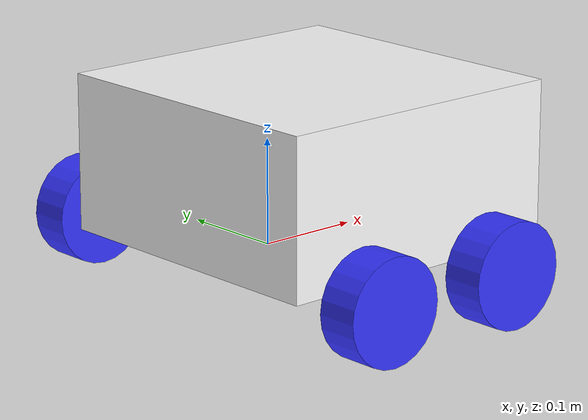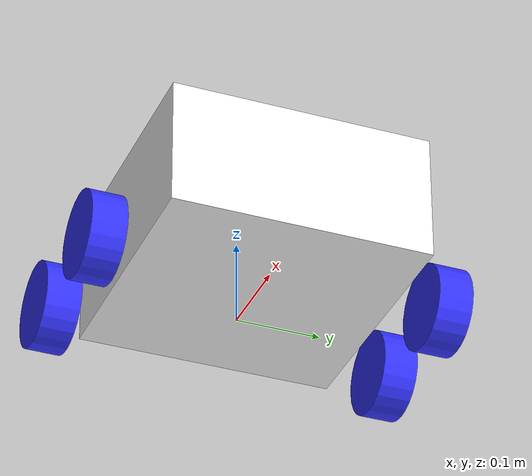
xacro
<?xml version="1.0"?>
<robot xmlns:xacro="http://www.ros.org/wiki/xacro" >

    <xacro:include filename="inertial_macros.xacro" />

    <!-- Colour Parameters -->
    <material name="white">
        <color rgba="1 1 1 1"/>
    </material>

    <material name="orange">
        <color rgba="1 0.3 0.1 1"/>
    </material>

    <material name="red">
        <color rgba="1 0 0 1"/>
    </material>

    <material name="blue">
        <color rgba="0.2 0.2 1 1"/>
    </material>

    <material name="black">
        <color rgba="0 0 0 1"/>
    </material>

    <!-- Base Link -->
    <link name="base_link">

    </link>

    <!-- Chassis Joint -->
    <joint name="chassis_joint" type="fixed">
        <parent link="base_link"/>
        <child link="chassis"/>
        <origin xyz="-0.1 0 0"/>
    </joint>

    <!-- Chassis Link -->

    <link name="chassis">
        <visual>
            <origin xyz="0.15 0 0.075" rpy="0 0 0"/>
            <geometry>
                <box size="0.3 0.3 0.15"/>
            </geometry>
            <material name="white"/>
        </visual>
        <collision>
            <origin xyz="0.15 0 0.075" rpy="0 0 0"/>
            <geometry>
                <box size="0.3 0.3 0.15"/>
            </geometry>
            <material name="white"/>
        </collision>
        <xacro:inertial_box mass="0.5" x="0.3" y="0.3" z="0.15">
            <origin xyz="0.15 0 0.075" rpy="0 0 0"/>
        </xacro:inertial_box>
    </link>

    <gazebo reference="chassis">
        <material>Gazebo/White</material>
    </gazebo>

    <!-- Front Left Wheel-->
    <joint name="front_left_wheel_joint" type="continuous">
        <parent link="base_link"/>
        <child link="front_left_wheel"/>
        <origin xyz="0.1 0.2 0" rpy="-${pi/2} 0 0"/>
        <axis xyz="0 0 1"/>
    </joint>

    <link name="front_left_wheel">
        <visual>
            <geometry>
                <cylinder length="0.04" radius="0.05" />
            </geometry>
            <material name="blue"/>
        </visual>
        <collision>
            <geometry>
                <cylinder length="0.04" radius="0.05" />
            </geometry>
            <material name="blue"/>
        </collision>
        <xacro:inertial_cylinder mass="0.1" length="0.05" radius="0.05">
            <origin xyz="0 0 0" rpy="0 0 0"/>
        </xacro:inertial_cylinder>
    </link>

    <gazebo reference="front_left_wheel">
        <material>Gazebo/Blue</material>
    </gazebo>

    <!-- Back Left Wheel -->
    <joint name="back_left_wheel_joint" type="continuous">
        <parent link="base_link"/>
        <child link="back_left_wheel"/>
        <origin xyz="-0.05 0.2 0" rpy="-${pi/2} 0 0"/>
        <axis xyz="0 0 1"/>
    </joint>

    <link name="back_left_wheel">
        <visual>
            <geometry>
                <cylinder length="0.04" radius="0.05" />
            </geometry>
            <material name="blue"/>
        </visual>
        <collision>
            <geometry>
                <cylinder length="0.04" radius="0.05" />
            </geometry>
            <material name="blue"/>
        </collision>
        <xacro:inertial_cylinder mass="0.1" length="0.05" radius="0.05">
            <origin xyz="0 0 0" rpy="0 0 0"/>
        </xacro:inertial_cylinder>
    </link>

    <gazebo reference="back_left_wheel">
        <material>Gazebo/Blue</material>
    </gazebo>

    <!-- Back Right Wheel-->
    <joint name="back_right_wheel_joint" type="continuous">
        <parent link="base_link"/>
        <child link="back_right_wheel"/>
        <origin xyz="-0.05 -0.2 0" rpy="${pi/2} 0 0"/>
        <axis xyz="0 0 -1"/>
    </joint>

    <link name="back_right_wheel">
        <visual>
            <geometry>
                <cylinder length="0.04" radius="0.05" />
            </geometry>
            <material name="blue"/>
        </visual>
        <collision>
            <geometry>
                <cylinder length="0.04" radius="0.05" />
            </geometry>
            <material name="blue"/>
        </collision>
        <xacro:inertial_cylinder mass="0.1" length="0.05" radius="0.05">
            <origin xyz="0 0 0" rpy="0 0 0"/>
        </xacro:inertial_cylinder>
    </link>

    <gazebo reference="back_right_wheel">
        <material>Gazebo/Blue</material>
    </gazebo>

    <!-- Front Right Wheel-->
    <joint name="front_right_wheel_joint" type="continuous">
        <parent link="base_link"/>
        <child link="front_right_wheel"/>
        <origin xyz="0.1 -0.2 0" rpy="${pi/2} 0 0"/>
        <axis xyz="0 0 -1"/>
    </joint>

    <link name="front_right_wheel">
        <visual>
            <geometry>
                <cylinder length="0.04" radius="0.05" />
            </geometry>
            <material name="blue"/>
        </visual>
        <collision>
            <geometry>
                <cylinder length="0.04" radius="0.05" />
            </geometry>
            <material name="blue"/>
        </collision>
        <xacro:inertial_cylinder mass="0.1" length="0.05" radius="0.05">
            <origin xyz="0 0 0" rpy="0 0 0"/>
        </xacro:inertial_cylinder>
    </link>

    <gazebo reference="front_right_wheel">
        <material>Gazebo/Blue</material>
    </gazebo>

</robot>
